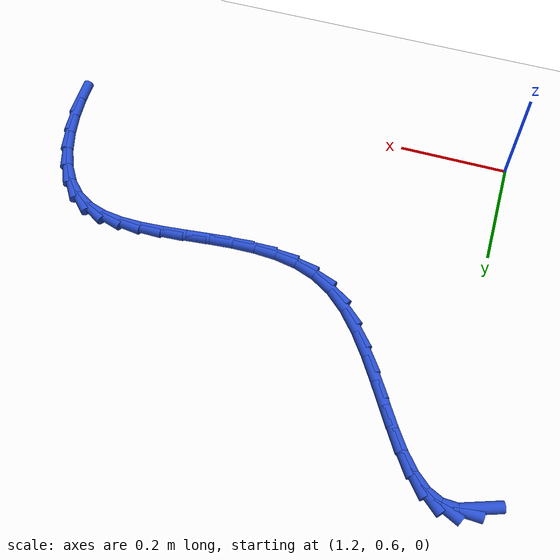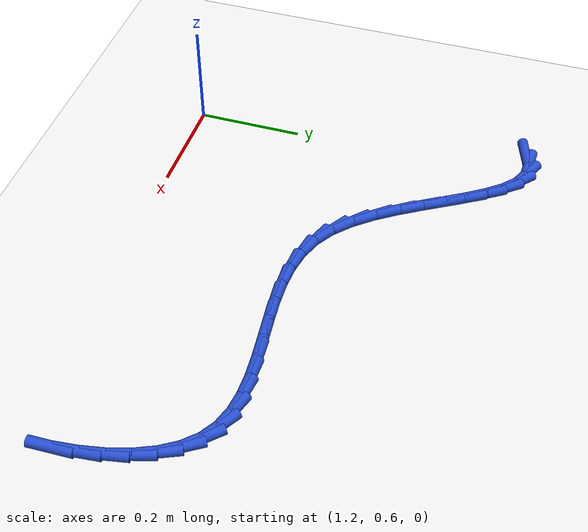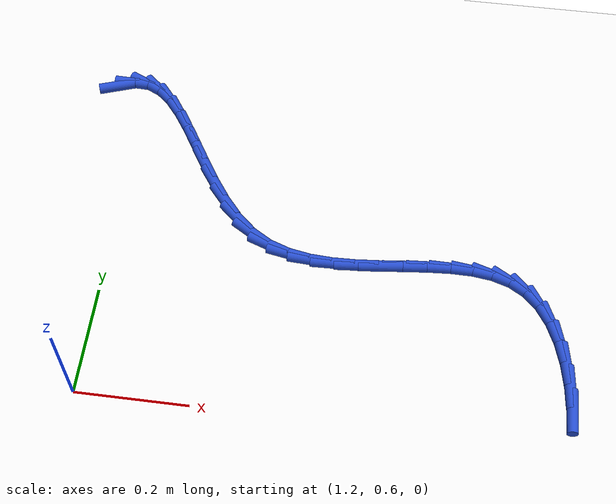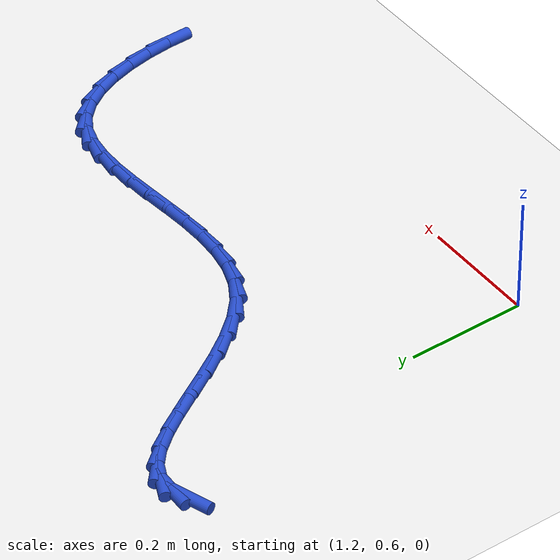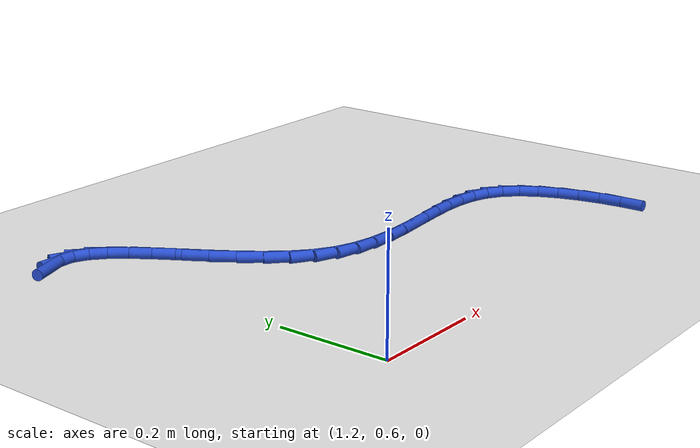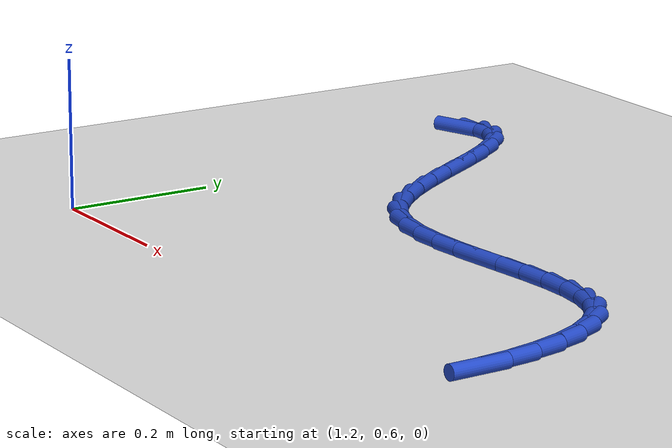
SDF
<sdf version="1.6">
 <world name="default">
  <model name="ground_plane">
   <static>1</static>
   <link name="link">
    <collision name="collision">
     <geometry><plane><normal>0 0 1</normal><size>100 100</size></plane></geometry>
     <surface><friction><ode><mu>100</mu><mu2>50</mu2></ode></friction></surface>
    </collision>
    <visual name="visual">
     <cast_shadows>0</cast_shadows>
     <geometry><plane><normal>0 0 1</normal><size>100 100</size></plane></geometry>
     <material>
      <script><uri>file://media/materials/scripts/gazebo.material</uri><name>Gazebo/WhiteGlow</name></script>
     </material>
    </visual>
   </link>
  </model>
  <model name="line">
   <link name="link_46">
    <pose>1.1411474625941191 1.2515087490496493 0.01 0 1.57 0.3312195994265492</pose>
    <collision name="collision">
     <geometry><cylinder><radius>0.01</radius><length>0.08</length></cylinder></geometry>
    </collision>
    <visual name="visual">
     <material>
      <script><name>Gazebo/Blue</name><uri>file://media/materials/scripts/gazebo.material</uri></script>
     </material>
     <geometry><cylinder><radius>0.01</radius><length>0.08</length></cylinder></geometry>
    </visual>
   </link>
   <link name="link_47">
    <pose>1.1705973803683316 1.2616362260407246 0.01 0 1.57 -0.03236546962473143</pose>
    <collision name="collision">
     <geometry><cylinder><radius>0.01</radius><length>0.08</length></cylinder></geometry>
    </collision>
    <visual name="visual">
     <material>
      <script><name>Gazebo/Blue</name><uri>file://media/materials/scripts/gazebo.material</uri></script>
     </material>
     <geometry><cylinder><radius>0.01</radius><length>0.08</length></cylinder></geometry>
    </visual>
   </link>
   <link name="link_48">
    <pose>1.1979571117771861 1.2607504061575165 0.01 0 1.57 -0.4384120962369894</pose>
    <collision name="collision">
     <geometry><cylinder><radius>0.01</radius><length>0.08</length></cylinder></geometry>
    </collision>
    <visual name="visual">
     <material>
      <script><name>Gazebo/Blue</name><uri>file://media/materials/scripts/gazebo.material</uri></script>
     </material>
     <geometry><cylinder><radius>0.01</radius><length>0.08</length></cylinder></geometry>
    </visual>
   </link>
   <link name="link_49">
    <pose>1.223470258809501 1.248788767781534 0.01 0 1.57 -0.7208110931500036</pose>
    <collision name="collision">
     <geometry><cylinder><radius>0.01</radius><length>0.08</length></cylinder></geometry>
    </collision>
    <visual name="visual">
     <material>
      <script><name>Gazebo/Blue</name><uri>file://media/materials/scripts/gazebo.material</uri></script>
     </material>
     <geometry><cylinder><radius>0.01</radius><length>0.08</length></cylinder></geometry>
    </visual>
   </link>
   <link name="link_50">
    <pose>1.2476304705166859 1.227563926441597 0.01 0 1.57 -0.887652762361453</pose>
    <collision name="collision">
     <geometry><cylinder><radius>0.01</radius><length>0.08</length></cylinder></geometry>
    </collision>
    <visual name="visual">
     <material>
      <script><name>Gazebo/Blue</name><uri>file://media/materials/scripts/gazebo.material</uri></script>
     </material>
     <geometry><cylinder><radius>0.01</radius><length>0.08</length></cylinder></geometry>
    </visual>
   </link>
   <link name="link_51">
    <pose>1.2709366409798193 1.1989278308619362 0.01 0 1.57 -0.9796805731014854</pose>
    <collision name="collision">
     <geometry><cylinder><radius>0.01</radius><length>0.08</length></cylinder></geometry>
    </collision>
    <visual name="visual">
     <material>
      <script><name>Gazebo/Blue</name><uri>file://media/materials/scripts/gazebo.material</uri></script>
     </material>
     <geometry><cylinder><radius>0.01</radius><length>0.08</length></cylinder></geometry>
    </visual>
   </link>
   <link name="link_52">
    <pose>1.2938876642799808 1.164732429766782 0.01 0 1.57 -1.0235547129125873</pose>
    <collision name="collision">
     <geometry><cylinder><radius>0.01</radius><length>0.08</length></cylinder></geometry>
    </collision>
    <visual name="visual">
     <material>
      <script><name>Gazebo/Blue</name><uri>file://media/materials/scripts/gazebo.material</uri></script>
     </material>
     <geometry><cylinder><radius>0.01</radius><length>0.08</length></cylinder></geometry>
    </visual>
   </link>
   <link name="link_53">
    <pose>1.3169824344982497 1.1268296718803652 0.01 0 1.57 -1.0325525086766996</pose>
    <collision name="collision">
     <geometry><cylinder><radius>0.01</radius><length>0.08</length></cylinder></geometry>
    </collision>
    <visual name="visual">
     <material>
      <script><name>Gazebo/Blue</name><uri>file://media/materials/scripts/gazebo.material</uri></script>
     </material>
     <geometry><cylinder><radius>0.01</radius><length>0.08</length></cylinder></geometry>
    </visual>
   </link>
   <link name="link_54">
    <pose>1.340719845715705 1.0870715059269145 0.01 0 1.57 -1.0116920395291449</pose>
    <collision name="collision">
     <geometry><cylinder><radius>0.01</radius><length>0.08</length></cylinder></geometry>
    </collision>
    <visual name="visual">
     <material>
      <script><name>Gazebo/Blue</name><uri>file://media/materials/scripts/gazebo.material</uri></script>
     </material>
     <geometry><cylinder><radius>0.01</radius><length>0.08</length></cylinder></geometry>
    </visual>
   </link>
   <link name="link_55">
    <pose>1.3655987920134263 1.0473098806306613 0.01 0 1.57 -0.9604212979409047</pose>
    <collision name="collision">
     <geometry><cylinder><radius>0.01</radius><length>0.08</length></cylinder></geometry>
    </collision>
    <visual name="visual">
     <material>
      <script><name>Gazebo/Blue</name><uri>file://media/materials/scripts/gazebo.material</uri></script>
     </material>
     <geometry><cylinder><radius>0.01</radius><length>0.08</length></cylinder></geometry>
    </visual>
   </link>
   <link name="link_56">
    <pose>1.392118167472492 1.009396744715836 0.01 0 1.57 -0.8735084850807119</pose>
    <collision name="collision">
     <geometry><cylinder><radius>0.01</radius><length>0.08</length></cylinder></geometry>
    </collision>
    <visual name="visual">
     <material>
      <script><name>Gazebo/Blue</name><uri>file://media/materials/scripts/gazebo.material</uri></script>
     </material>
     <geometry><cylinder><radius>0.01</radius><length>0.08</length></cylinder></geometry>
    </visual>
   </link>
   <link name="link_57">
    <pose>1.4207768661739821 0.975184046906668 0.01 0 1.57 -0.741451710092847</pose>
    <collision name="collision">
     <geometry><cylinder><radius>0.01</radius><length>0.08</length></cylinder></geometry>
    </collision>
    <visual name="visual">
     <material>
      <script><name>Gazebo/Blue</name><uri>file://media/materials/scripts/gazebo.material</uri></script>
     </material>
     <geometry><cylinder><radius>0.01</radius><length>0.08</length></cylinder></geometry>
    </visual>
   </link>
   <link name="link_58">
    <pose>1.4520737821989762 0.9465237359273885 0.01 0 1.57 -0.5548622052966526</pose>
    <collision name="collision">
     <geometry><cylinder><radius>0.01</radius><length>0.08</length></cylinder></geometry>
    </collision>
    <visual name="visual">
     <material>
      <script><name>Gazebo/Blue</name><uri>file://media/materials/scripts/gazebo.material</uri></script>
     </material>
     <geometry><cylinder><radius>0.01</radius><length>0.08</length></cylinder></geometry>
    </visual>
   </link>
   <link name="link_59">
    <pose>1.4864823347995044 0.9251967931378107 0.01 0 1.57 -0.3521727831574931</pose>
    <collision name="collision">
     <geometry><cylinder><radius>0.01</radius><length>0.08</length></cylinder></geometry>
    </collision>
    <visual name="visual">
     <material>
      <script><name>Gazebo/Blue</name><uri>file://media/materials/scripts/gazebo.material</uri></script>
     </material>
     <geometry><cylinder><radius>0.01</radius><length>0.08</length></cylinder></geometry>
    </visual>
   </link>
   <link name="link_60">
    <pose>1.523921033934629 0.911438342614883 0.01 0 1.57 -0.18492250126478751</pose>
    <collision name="collision">
     <geometry><cylinder><radius>0.01</radius><length>0.08</length></cylinder></geometry>
    </collision>
    <visual name="visual">
     <material>
      <script><name>Gazebo/Blue</name><uri>file://media/materials/scripts/gazebo.material</uri></script>
     </material>
     <geometry><cylinder><radius>0.01</radius><length>0.08</length></cylinder></geometry>
    </visual>
   </link>
   <link name="link_61">
    <pose>1.5637701810564568 0.903984175930749 0.01 0 1.57 -0.059417820040100336</pose>
    <collision name="collision">
     <geometry><cylinder><radius>0.01</radius><length>0.08</length></cylinder></geometry>
    </collision>
    <visual name="visual">
     <material>
      <script><name>Gazebo/Blue</name><uri>file://media/materials/scripts/gazebo.material</uri></script>
     </material>
     <geometry><cylinder><radius>0.01</radius><length>0.08</length></cylinder></geometry>
    </visual>
   </link>
   <link name="link_62">
    <pose>1.6053879439230734 0.9015084249727444 0.01 0 1.57 0.027523966733935982</pose>
    <collision name="collision">
     <geometry><cylinder><radius>0.01</radius><length>0.08</length></cylinder></geometry>
    </collision>
    <visual name="visual">
     <material>
      <script><name>Gazebo/Blue</name><uri>file://media/materials/scripts/gazebo.material</uri></script>
     </material>
     <geometry><cylinder><radius>0.01</radius><length>0.08</length></cylinder></geometry>
    </visual>
   </link>
   <link name="link_63">
    <pose>1.6481324902925651 0.9026852216282066 0.01 0 1.57 0.08086690968873678</pose>
    <collision name="collision">
     <geometry><cylinder><radius>0.01</radius><length>0.08</length></cylinder></geometry>
    </collision>
    <visual name="visual">
     <material>
      <script><name>Gazebo/Blue</name><uri>file://media/materials/scripts/gazebo.material</uri></script>
     </material>
     <geometry><cylinder><radius>0.01</radius><length>0.08</length></cylinder></geometry>
    </visual>
   </link>
   <link name="link_64">
    <pose>1.691361987923018 0.906188697784472 0.01 0 1.57 0.10419555385461013</pose>
    <collision name="collision">
     <geometry><cylinder><radius>0.01</radius><length>0.08</length></cylinder></geometry>
    </collision>
    <visual name="visual">
     <material>
      <script><name>Gazebo/Blue</name><uri>file://media/materials/scripts/gazebo.material</uri></script>
     </material>
     <geometry><cylinder><radius>0.01</radius><length>0.08</length></cylinder></geometry>
    </visual>
   </link>
   <link name="link_65">
    <pose>1.7344346045725179 0.9106929853288773 0.01 0 1.57 0.09854057936121084</pose>
    <collision name="collision">
     <geometry><cylinder><radius>0.01</radius><length>0.08</length></cylinder></geometry>
    </collision>
    <visual name="visual">
     <material>
      <script><name>Gazebo/Blue</name><uri>file://media/materials/scripts/gazebo.material</uri></script>
     </material>
     <geometry><cylinder><radius>0.01</radius><length>0.08</length></cylinder></geometry>
    </visual>
   </link>
   <link name="link_66">
    <pose>1.7767085079991507 0.9148722161487592 0.01 0 1.57 0.061838715133478495</pose>
    <collision name="collision">
     <geometry><cylinder><radius>0.01</radius><length>0.08</length></cylinder></geometry>
    </collision>
    <visual name="visual">
     <material>
      <script><name>Gazebo/Blue</name><uri>file://media/materials/scripts/gazebo.material</uri></script>
     </material>
     <geometry><cylinder><radius>0.01</radius><length>0.08</length></cylinder></geometry>
    </visual>
   </link>
   <link name="link_67">
    <pose>1.817541865961002 0.9174005221314543 0.01 0 1.57 -0.011573047733451986</pose>
    <collision name="collision">
     <geometry><cylinder><radius>0.01</radius><length>0.08</length></cylinder></geometry>
    </collision>
    <visual name="visual">
     <material>
      <script><name>Gazebo/Blue</name><uri>file://media/materials/scripts/gazebo.material</uri></script>
     </material>
     <geometry><cylinder><radius>0.01</radius><length>0.08</length></cylinder></geometry>
    </visual>
   </link>
   <link name="link_68">
    <pose>1.8562928462161583 0.916952035164299 0.01 0 1.57 -0.13112161026357474</pose>
    <collision name="collision">
     <geometry><cylinder><radius>0.01</radius><length>0.08</length></cylinder></geometry>
    </collision>
    <visual name="visual">
     <material>
      <script><name>Gazebo/Blue</name><uri>file://media/materials/scripts/gazebo.material</uri></script>
     </material>
     <geometry><cylinder><radius>0.01</radius><length>0.08</length></cylinder></geometry>
    </visual>
   </link>
   <link name="link_69">
    <pose>1.8923196165227052 0.9122008871346304 0.01 0 1.57 -0.3077087460870319</pose>
    <collision name="collision">
     <geometry><cylinder><radius>0.01</radius><length>0.08</length></cylinder></geometry>
    </collision>
    <visual name="visual">
     <material>
      <script><name>Gazebo/Blue</name><uri>file://media/materials/scripts/gazebo.material</uri></script>
     </material>
     <geometry><cylinder><radius>0.01</radius><length>0.08</length></cylinder></geometry>
    </visual>
   </link>
   <link name="link_70">
    <pose>1.9249803446387284 0.9018212099297851 0.01 0 1.57 -0.5438525082337025</pose>
    <collision name="collision">
     <geometry><cylinder><radius>0.01</radius><length>0.08</length></cylinder></geometry>
    </collision>
    <visual name="visual">
     <material>
      <script><name>Gazebo/Blue</name><uri>file://media/materials/scripts/gazebo.material</uri></script>
     </material>
     <geometry><cylinder><radius>0.01</radius><length>0.08</length></cylinder></geometry>
    </visual>
   </link>
   <link name="link_71">
    <pose>1.9536353850999932 0.8844941217251963 0.01 0 1.57 -0.7957552287456654</pose>
    <collision name="collision">
     <geometry><cylinder><radius>0.01</radius><length>0.08</length></cylinder></geometry>
    </collision>
    <visual name="visual">
     <material>
      <script><name>Gazebo/Blue</name><uri>file://media/materials/scripts/gazebo.material</uri></script>
     </material>
     <geometry><cylinder><radius>0.01</radius><length>0.08</length></cylinder></geometry>
    </visual>
   </link>
   <link name="link_72">
    <pose>1.9779015399424775 0.8597200357419358 0.01 0 1.57 -1.0002063954576825</pose>
    <collision name="collision">
     <geometry><cylinder><radius>0.01</radius><length>0.08</length></cylinder></geometry>
    </collision>
    <visual name="visual">
     <material>
      <script><name>Gazebo/Blue</name><uri>file://media/materials/scripts/gazebo.material</uri></script>
     </material>
     <geometry><cylinder><radius>0.01</radius><length>0.08</length></cylinder></geometry>
    </visual>
   </link>
   <link name="link_73">
    <pose>1.9978893446329204 0.8285767381657223 0.01 0 1.57 -1.158053088087301</pose>
    <collision name="collision">
     <geometry><cylinder><radius>0.01</radius><length>0.08</length></cylinder></geometry>
    </collision>
    <visual name="visual">
     <material>
      <script><name>Gazebo/Blue</name><uri>file://media/materials/scripts/gazebo.material</uri></script>
     </material>
     <geometry><cylinder><radius>0.01</radius><length>0.08</length></cylinder></geometry>
    </visual>
   </link>
   <link name="link_74">
    <pose>2.013765462370057 0.7923213313101695 0.01 0 1.57 -1.2816748626171814</pose>
    <collision name="collision">
     <geometry><cylinder><radius>0.01</radius><length>0.08</length></cylinder></geometry>
    </collision>
    <visual name="visual">
     <material>
      <script><name>Gazebo/Blue</name><uri>file://media/materials/scripts/gazebo.material</uri></script>
     </material>
     <geometry><cylinder><radius>0.01</radius><length>0.08</length></cylinder></geometry>
    </visual>
   </link>
   <link name="link_75">
    <pose>2.0256965563526217 0.7522109174888914 0.01 0 1.57 -1.382172310640261</pose>
    <collision name="collision">
     <geometry><cylinder><radius>0.01</radius><length>0.08</length></cylinder></geometry>
    </collision>
    <visual name="visual">
     <material>
      <script><name>Gazebo/Blue</name><uri>file://media/materials/scripts/gazebo.material</uri></script>
     </material>
     <geometry><cylinder><radius>0.01</radius><length>0.08</length></cylinder></geometry>
    </visual>
   </link>
   <link name="link_76">
    <pose>2.0338492897793485 0.7095025990155033 0.01 0 1.57 -1.46806893944363</pose>
    <collision name="collision">
     <geometry><cylinder><radius>0.01</radius><length>0.08</length></cylinder></geometry>
    </collision>
    <visual name="visual">
     <material>
      <script><name>Gazebo/Blue</name><uri>file://media/materials/scripts/gazebo.material</uri></script>
     </material>
     <geometry><cylinder><radius>0.01</radius><length>0.08</length></cylinder></geometry>
    </visual>
   </link>
   <link name="link_77">
    <pose>2.0383903258489733 0.6654534782036178 0.01 0 1.57 -1.5459672617309674</pose>
    <collision name="collision">
     <geometry><cylinder><radius>0.01</radius><length>0.08</length></cylinder></geometry>
    </collision>
    <visual name="visual">
     <material>
      <script><name>Gazebo/Blue</name><uri>file://media/materials/scripts/gazebo.material</uri></script>
     </material>
     <geometry><cylinder><radius>0.01</radius><length>0.08</length></cylinder></geometry>
    </visual>
   </link>
  </model>
 </world>
</sdf>
